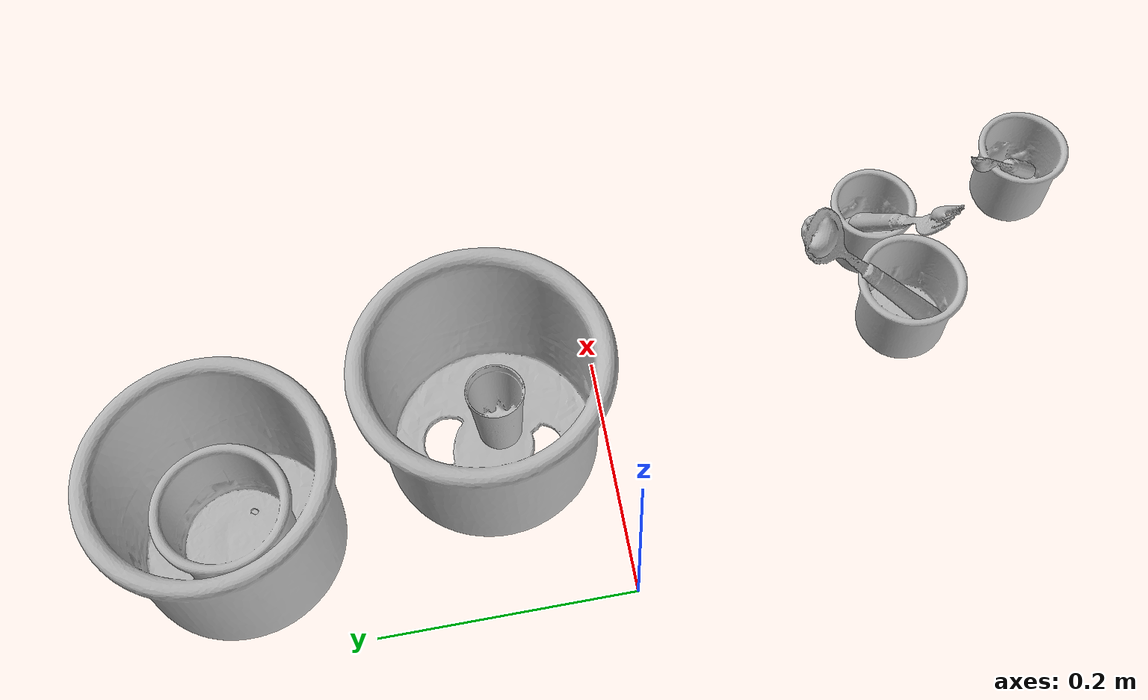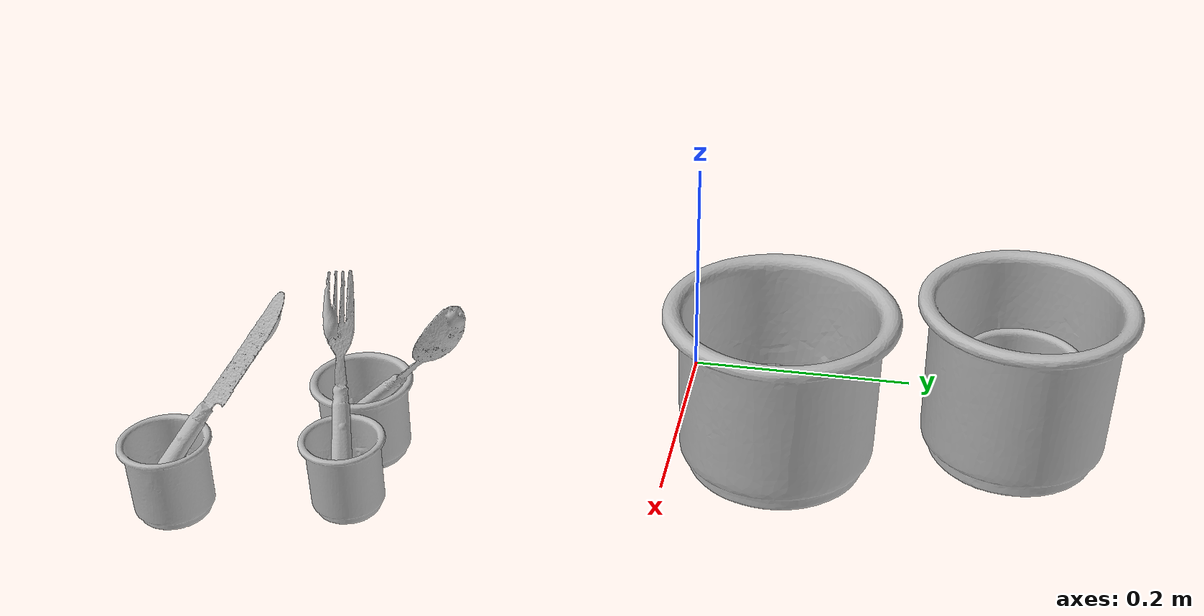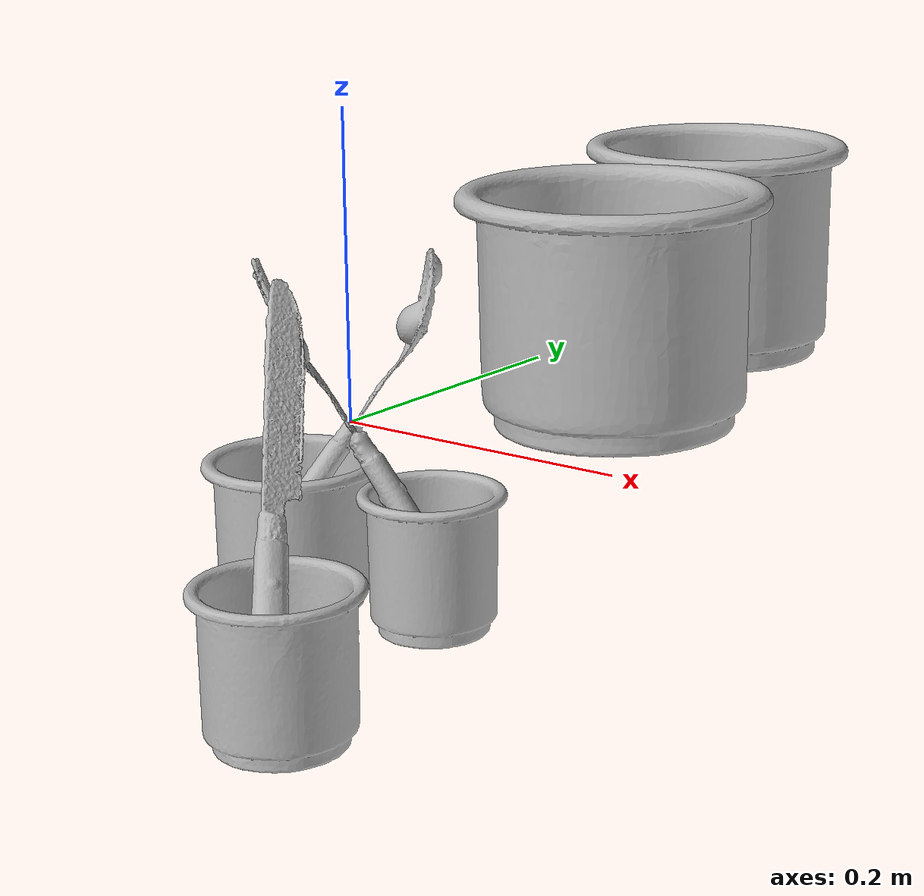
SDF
<?xml version="1.0" ?>
<sdf version="1.4">

  <world name="default">

    <light name="light1" type="point">

      <pose>0 0 1 0 0 0</pose>

      <diffuse>3 3 3 1</diffuse>

      <specular>3 3 3 1</specular>

    </light>

    <light name="light2" type="point">

      <pose>0 0.5 2 0 0 0</pose>

      <diffuse>1 1 1 1</diffuse>

      <specular>1 1 1 1</specular>

    </light>

    <light name="light3" type="point">

      <pose>0 0.5 2 0 0 0</pose>

      <diffuse>3 3 3 1</diffuse>

      <specular>3 3 3 1</specular>

    </light>

    <scene>

      <ambient>0.7 0.7 0.7</ambient>

    </scene>

    <model name="cup1">

      <link name="link_cup1">

        <collision name="default">

          <geometry>

            <mesh>

              <uri>model://d_cups/collision_meshes/collision.obj</uri>

              <scale>1.0 1.0 1.0</scale>

            </mesh>

          </geometry>

          <surface>

            <friction>

              <ode>

                <mu>0.5</mu>

                <mu2>0.5</mu2>

              </ode>

            </friction>

          </surface>

        </collision>

        <visual name="default">

          <geometry>

            <mesh>

              <uri>model://d_cups/visual_meshes/visual.dae</uri>

              <scale>1.0 1.0 1.0</scale>

            </mesh>

          </geometry>

        </visual>

        <inertial>

          <mass>0.02583918906748295</mass>

          <pose>0.0008068039314821362 0.001911739120259881 -0.0022666507866233587 0.24011637128749466 -0.2471028358176743 0.5942765290496752</pose>

          <inertia>

            <ixx>2.1633481e-05</ixx>

            <iyy>2.1570875e-05</iyy>

            <izz>1.9581978e-05</izz>

            <ixy>0</ixy>

            <ixz>0</ixz>

            <iyz>0</iyz>

          </inertia>

        </inertial>

      </link>

      <pose>0.26970458030700684 -0.25049638748168945 0.03465955704450607 -1.326857515377802e-05 -2.5539323245719607e-05 -0.047039607563055336</pose>

    </model>

    <model name="silverware1">

      <link name="link_silverware1">

        <collision name="default">

          <geometry>

            <mesh>

              <uri>model://fork/collision_meshes/collision.obj</uri>

              <scale>1.0 1.0 1.0</scale>

            </mesh>

          </geometry>

          <surface>

            <friction>

              <ode>

                <mu>0.5</mu>

                <mu2>0.5</mu2>

              </ode>

            </friction>

          </surface>

        </collision>

        <visual name="default">

          <geometry>

            <mesh>

              <uri>model://fork/visual_meshes/visual.dae</uri>

              <scale>1.0 1.0 1.0</scale>

            </mesh>

          </geometry>

        </visual>

        <inertial>

          <mass>0.019409121945500374</mass>

          <pose>-0.02957003004848957 0.00046588227269239724 0.0003218860365450382 -0.013551247621251511 -0.010977829980421018 0.014453895491116085</pose>

          <inertia>

            <ixx>6.8039935e-07</ixx>

            <iyy>5.0671635e-05</iyy>

            <izz>5.097597e-05</izz>

            <ixy>0</ixy>

            <ixz>0</ixz>

            <iyz>0</iyz>

          </inertia>

        </inertial>

      </link>

      <pose>0.23405331373214722 -0.26162782311439514 0.09024423360824585 0.5151668091393247 -0.9434742402214823 -2.907230900288567</pose>

    </model>

    <model name="cup2">

      <link name="link_cup2">

        <collision name="default">

          <geometry>

            <mesh>

              <uri>model://e_cups/collision_meshes/collision.obj</uri>

              <scale>1.0 1.0 1.0</scale>

            </mesh>

          </geometry>

          <surface>

            <friction>

              <ode>

                <mu>0.5</mu>

                <mu2>0.5</mu2>

              </ode>

            </friction>

          </surface>

        </collision>

        <visual name="default">

          <geometry>

            <mesh>

              <uri>model://e_cups/visual_meshes/visual.dae</uri>

              <scale>1.0 1.0 1.0</scale>

            </mesh>

          </geometry>

        </visual>

        <inertial>

          <mass>0.044056184589862823</mass>

          <pose>0.0011355748865753412 0.0028797839768230915 -0.0038829699624329805 0.6952404811842238 0.0876797234541652 -0.5235249298074676</pose>

          <inertia>

            <ixx>3.8846523e-05</ixx>

            <iyy>4.060018e-05</iyy>

            <izz>3.714177e-05</izz>

            <ixy>0</ixy>

            <ixz>0</ixz>

            <iyz>0</iyz>

          </inertia>

        </inertial>

      </link>

      <pose>0.3004019856452942 -0.38952329754829407 0.03559885174036026 0.0007684175707497585 -0.0009773385258550604 0.002482785092882035</pose>

    </model>

    <model name="silverware2">

      <link name="link_silverware2">

        <collision name="default">

          <geometry>

            <mesh>

              <uri>model://knife/collision_meshes/collision.obj</uri>

              <scale>1.0 1.0 1.0</scale>

            </mesh>

          </geometry>

          <surface>

            <friction>

              <ode>

                <mu>0.5</mu>

                <mu2>0.5</mu2>

              </ode>

            </friction>

          </surface>

        </collision>

        <visual name="default">

          <geometry>

            <mesh>

              <uri>model://knife/visual_meshes/visual.dae</uri>

              <scale>1.0 1.0 1.0</scale>

            </mesh>

          </geometry>

        </visual>

        <inertial>

          <mass>0.018338654190301895</mass>

          <pose>-0.02378525212407112 0.00152751209679991 5.062017953605391e-05 0.07305878484845407 0.017248414361503102 -0.007409825003193847</pose>

          <inertia>

            <ixx>5.2052525e-07</ixx>

            <iyy>7.045415e-05</iyy>

            <izz>7.062178e-05</izz>

            <ixy>0</ixy>

            <ixz>0</ixz>

            <iyz>0</iyz>

          </inertia>

        </inertial>

      </link>

      <pose>0.2715783417224884 -0.35582518577575684 0.09190431982278824 0.433580986623164 -0.8622271566849639 2.231292631022638</pose>

    </model>

    <model name="cup3">

      <link name="link_cup3">

        <collision name="default">

          <geometry>

            <mesh>

              <uri>model://g_cups/collision_meshes/collision.obj</uri>

              <scale>1.0 1.0 1.0</scale>

            </mesh>

          </geometry>

          <surface>

            <friction>

              <ode>

                <mu>0.5</mu>

                <mu2>0.5</mu2>

              </ode>

            </friction>

          </surface>

        </collision>

        <visual name="default">

          <geometry>

            <mesh>

              <uri>model://g_cups/visual_meshes/visual.dae</uri>

              <scale>1.0 1.0 1.0</scale>

            </mesh>

          </geometry>

        </visual>

        <inertial>

          <mass>0.07798270881175995</mass>

          <pose>-0.0007946274126879871 -4.206407902529463e-05 -0.0021329382434487343 -0.21383467808934026 -0.31409923984197585 0.31123390815877217</pose>

          <inertia>

            <ixx>9.102333e-05</ixx>

            <iyy>9.0713715e-05</iyy>

            <izz>9.428446e-05</izz>

            <ixy>0</ixy>

            <ixz>0</ixz>

            <iyz>0</iyz>

          </inertia>

        </inertial>

      </link>

      <pose>0.19062992930412292 -0.26000696420669556 0.03720322996377945 -1.8101379345201295e-06 -1.1610537518326833e-05 -0.01675635030870068</pose>

    </model>

    <model name="silverware3">

      <link name="link_silverware3">

        <collision name="default">

          <geometry>

            <mesh>

              <uri>model://spoon/collision_meshes/collision.obj</uri>

              <scale>1.0 1.0 1.0</scale>

            </mesh>

          </geometry>

          <surface>

            <friction>

              <ode>

                <mu>0.5</mu>

                <mu2>0.5</mu2>

              </ode>

            </friction>

          </surface>

        </collision>

        <visual name="default">

          <geometry>

            <mesh>

              <uri>model://spoon/visual_meshes/visual.dae</uri>

              <scale>1.0 1.0 1.0</scale>

            </mesh>

          </geometry>

        </visual>

        <inertial>

          <mass>0.03767607361078262</mass>

          <pose>-0.005526314023882151 -0.00160341733135283 -0.0007271650829352438 0.035216427360727776 -0.03906582911385382 0.006150613897789847</pose>

          <inertia>

            <ixx>2.095604e-06</ixx>

            <iyy>0.00014335623</iyy>

            <izz>0.00014438969</izz>

            <ixy>0</ixy>

            <ixz>0</ixz>

            <iyz>0</iyz>

          </inertia>

        </inertial>

      </link>

      <pose>0.19539807736873627 -0.223551407456398 0.08375022560358047 -0.5927983224057535 -0.8103078171093883 1.2945892572544953</pose>

    </model>

    <model name="cup4">

      <link name="link_cup4">

        <collision name="default">

          <geometry>

            <mesh>

              <uri>model://i_cups/collision_meshes/collision.obj</uri>

              <scale>2.0 2.0 2.0</scale>

            </mesh>

          </geometry>

          <surface>

            <friction>

              <ode>

                <mu>0.5</mu>

                <mu2>0.5</mu2>

              </ode>

            </friction>

          </surface>

        </collision>

        <visual name="default">

          <geometry>

            <mesh>

              <uri>model://i_cups/visual_meshes/visual.dae</uri>

              <scale>2.0 2.0 2.0</scale>

            </mesh>

          </geometry>

        </visual>

        <inertial>

          <mass>0.5538490414619446</mass>

          <pose>0.00022480632469523698 0.00033594807609915733 -0.0017158057307824492 -0.028982964625507153 -0.039873324075769 -0.3459146585522926</pose>

          <inertia>

            <ixx>0.003067248</ixx>

            <iyy>0.003094273</iyy>

            <izz>0.0034281453</izz>

            <ixy>0</ixy>

            <ixz>0</ixz>

            <iyz>0</iyz>

          </inertia>

        </inertial>

      </link>

      <pose>0.139994278550148 0.08974011987447739 0.07554934918880463 0.0018916196993448116 -0.0063951900800086605 0.9778859904138418</pose>

    </model>

    <model name="cup41">

      <link name="link_cup41">

        <collision name="default">

          <geometry>

            <mesh>

              <uri>model://cup_small/collision_meshes/collision.obj</uri>

              <scale>1.0 1.0 1.0</scale>

            </mesh>

          </geometry>

          <surface>

            <friction>

              <ode>

                <mu>0.5</mu>

                <mu2>0.5</mu2>

              </ode>

            </friction>

          </surface>

        </collision>

        <visual name="default">

          <geometry>

            <mesh>

              <uri>model://cup_small/visual_meshes/visual.dae</uri>

              <scale>1.0 1.0 1.0</scale>

            </mesh>

          </geometry>

        </visual>

        <inertial>

          <mass>0.014494861476123333</mass>

          <pose>0.000104824714071583 -0.0003377838584128767 -0.010742826387286186 -0.01149312034772668 -0.015280288652376739 -0.5058210166411498</pose>

          <inertia>

            <ixx>8.534352e-06</ixx>

            <iyy>8.578376e-06</iyy>

            <izz>3.853286e-06</izz>

            <ixy>0</ixy>

            <ixz>0</ixz>

            <iyz>0</iyz>

          </inertia>

        </inertial>

      </link>

      <pose>0.1468544602394104 0.08323845267295837 0.05195217207074165 0.010958546020335639 -0.002787533729909879 -1.0025297200901753</pose>

    </model>

    <model name="cup5">

      <link name="link_cup5">

        <collision name="default">

          <geometry>

            <mesh>

              <uri>model://h_cups/collision_meshes/collision.obj</uri>

              <scale>2.0 2.0 2.0</scale>

            </mesh>

          </geometry>

          <surface>

            <friction>

              <ode>

                <mu>0.5</mu>

                <mu2>0.5</mu2>

              </ode>

            </friction>

          </surface>

        </collision>

        <visual name="default">

          <geometry>

            <mesh>

              <uri>model://h_cups/visual_meshes/visual.dae</uri>

              <scale>2.0 2.0 2.0</scale>

            </mesh>

          </geometry>

        </visual>

        <inertial>

          <mass>0.5365790128707886</mass>

          <pose>-5.406028139987029e-05 0.00046037189895287156 -0.0036810787860304117 -0.02436222281077587 0.06545240855648493 0.12885003891433794</pose>

          <inertia>

            <ixx>0.002771868</ixx>

            <iyy>0.0027387904</iyy>

            <izz>0.0029069292</izz>

            <ixy>0</ixy>

            <ixz>0</ixz>

            <iyz>0</iyz>

          </inertia>

        </inertial>

      </link>

      <pose>0.08994647860527039 0.29002276062965393 0.0755159854888916 9.070371593895903e-08 -8.073403516618654e-08 0.32116204023249123</pose>

    </model>

    <model name="cup51">

      <link name="link_cup51">

        <collision name="default">

          <geometry>

            <mesh>

              <uri>model://j_cups/collision_meshes/collision.obj</uri>

              <scale>1.0 1.0 1.0</scale>

            </mesh>

          </geometry>

          <surface>

            <friction>

              <ode>

                <mu>0.5</mu>

                <mu2>0.5</mu2>

              </ode>

            </friction>

          </surface>

        </collision>

        <visual name="default">

          <geometry>

            <mesh>

              <uri>model://j_cups/visual_meshes/visual.dae</uri>

              <scale>1.0 1.0 1.0</scale>

            </mesh>

          </geometry>

        </visual>

        <inertial>

          <mass>0.08643309026956558</mass>

          <pose>0.0006164878141134977 0.000539897009730339 -0.0013479007175192237 0.030303582878034346 0.03757999590477698 0.4386876701083768</pose>

          <inertia>

            <ixx>0.00012691108</ixx>

            <iyy>0.00012823076</iyy>

            <izz>0.00014630218</izz>

            <ixy>0</ixy>

            <ixz>0</ixz>

            <iyz>0</iyz>

          </inertia>

        </inertial>

      </link>

      <pose>0.08771764487028122 0.2915548086166382 0.05522937700152397 -0.006244363982378712 -0.0014727218255669412 0.11442140779957201</pose>

    </model>

  </world>

</sdf>
